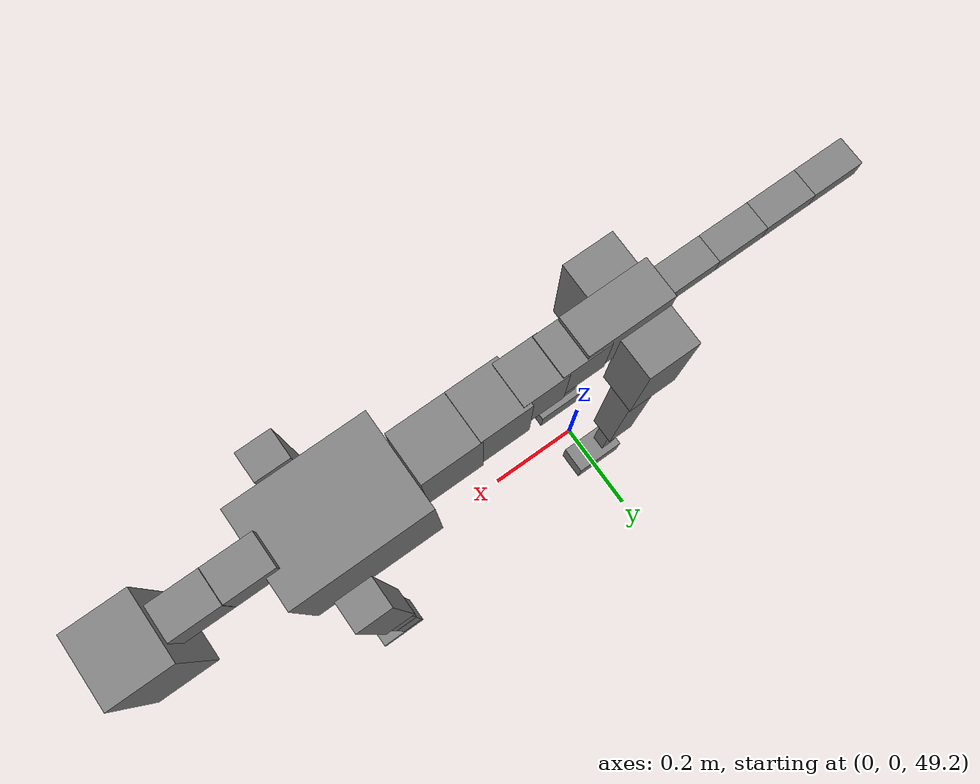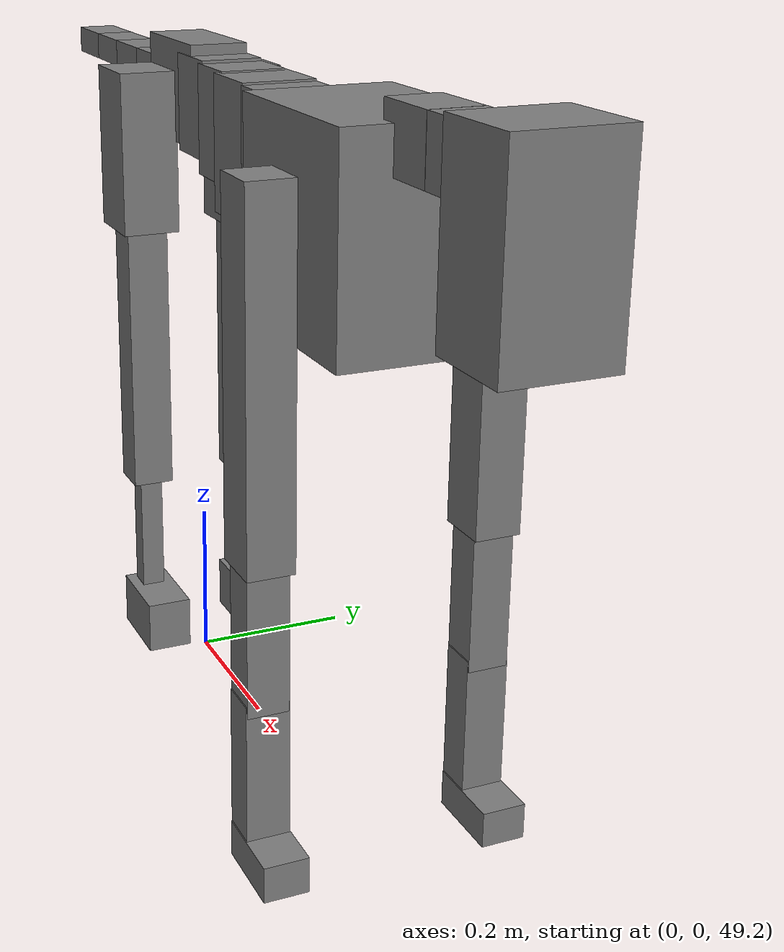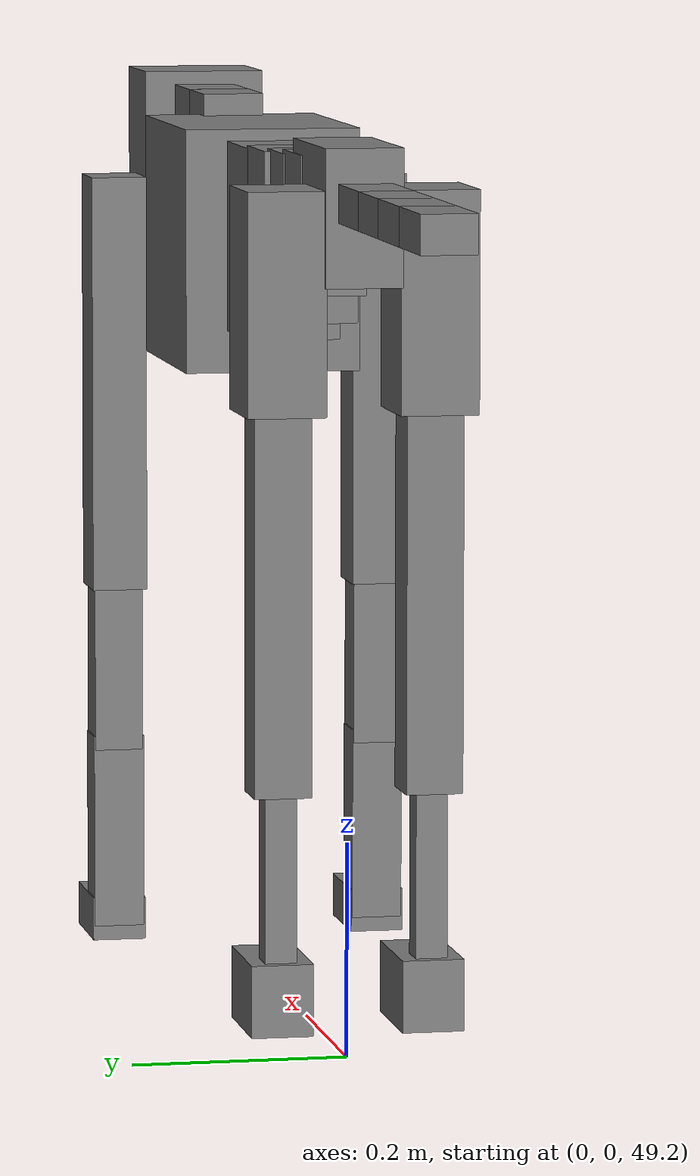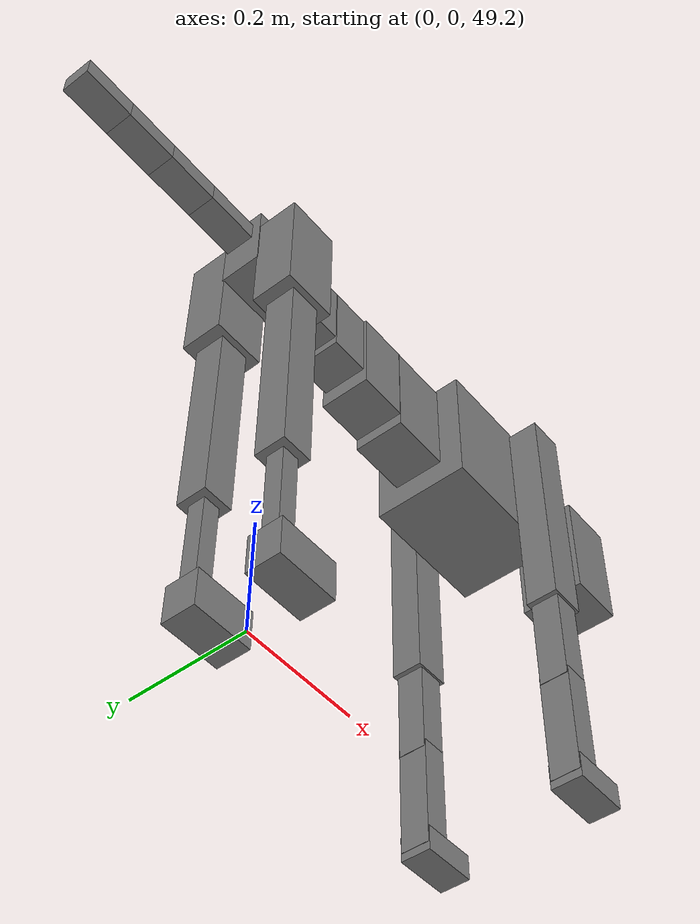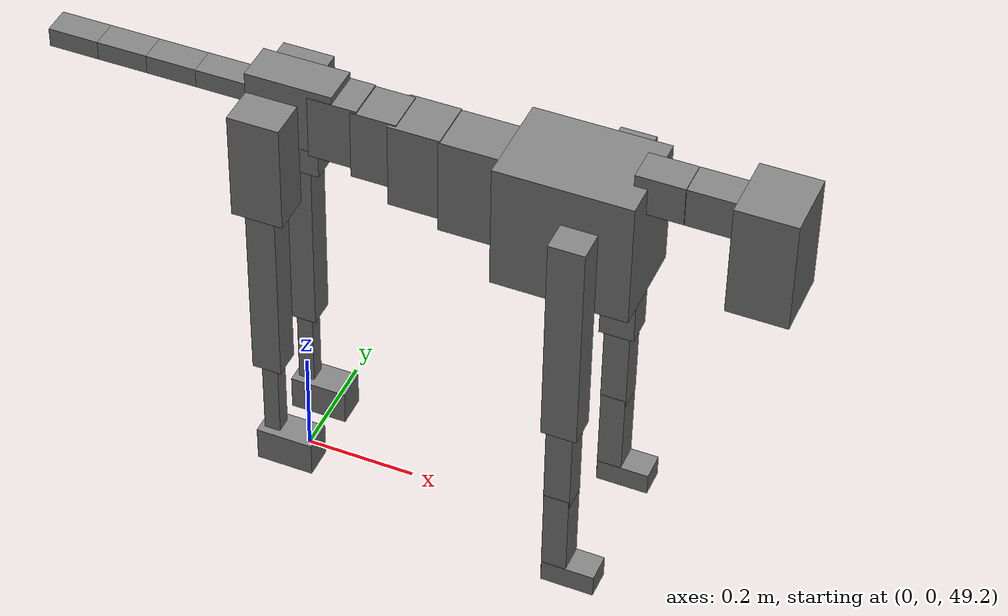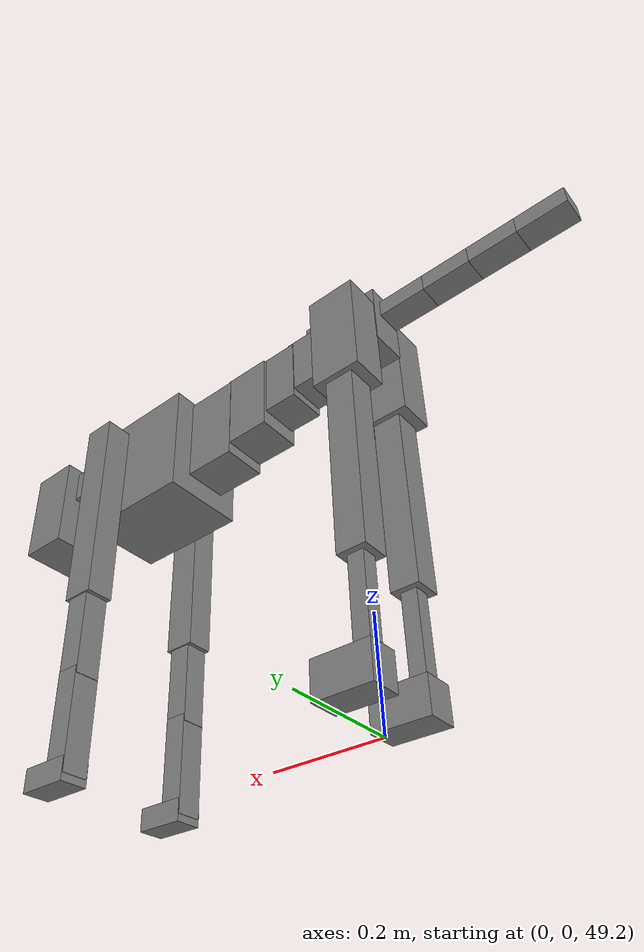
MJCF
<mujoco model="dog">

    <default>
        <joint armature="0.02" stiffness="1" damping="0.2" limited="true"/>
        <geom condim="3" friction="1 0.05 0.05" margin="0.01"/>
        <motor ctrllimited="true" ctrlrange="-1.0 1.0" forcelimited="true" gear="50"/>
    </default>

    <compiler inertiafromgeom="true" angle="radian"/>

    <option timestep="0.016" iterations="50" tolerance="1e-10" solver="Newton" jacobian="dense" cone="pyramidal"/>

    <size nconmax="20000" njmax="60000" nstack="5000000"/>
    <visual>
        <map force="0.1" zfar="30"/>
        <rgba haze="0.15 0.25 0.35 1"/>
        <quality shadowsize="2048"/>
        <global offwidth="800" offheight="800"/>
    </visual>

    <asset>
        <texture type="skybox" builtin="gradient" rgb1="0.3 0.5 0.7" rgb2="0 0 0" width="512" height="512"/>
        <texture name="texplane" type="2d" builtin="checker" rgb1=".2 .3 .4" rgb2=".1 0.15 0.2" width="512" height="512"
                 mark="cross" markrgb=".8 .8 .8"/>
        <texture name="texgeom" type="cube" builtin="flat" mark="cross" width="127" height="1278" rgb1="0.8 0.6 0.4"
                 rgb2="0.8 0.6 0.4" markrgb="1 1 1" random="0.01"/>

        <material name="matplane" reflectance="0.3" texture="texplane" texrepeat="1 1" texuniform="true"/>
        <material name="matgeom" texture="texgeom" texuniform="true" rgba="0.8 0.6 .4 1"/>
    </asset>

    <worldbody>
        <geom name="floor" pos="0 0 0" size="0 0 .25" type="plane" material="matplane" condim="3"/>

        <light directional="false" diffuse=".2 .2 .2" specular="0 0 0" pos="0 0 5" dir="0 0 -1" castshadow="false"/>
        <light mode="targetbodycom" target="torso" directional="false" diffuse=".8 .8 .8" specular="0.3 0.3 0.3"
               pos="0 0 4.0" dir="0 0 -1"/>

        <body name="root" pos="0 0 50">
            <freejoint name="root_1"/>
            <geom type="box" pos="0 0 -0.02" size="0.0774  0.0358  0.063" density="2030"/>

            <body name="spine1" pos="0.054 0 0">
                <joint name="spine1_y" axis="0 1 0" range="0 0.7" limited="true"/>
                <geom type="box" pos="0.02375 0 -0.03" size="0.04375  0.0375  0.05985" density="2030"/>

                <body name="spine2" pos="0.0612 0 0">
                    <joint name="spine2_y" axis="0 1 0" range="-0.15 0.15" limited="true"/>
                    <geom type="box" pos="0.03555  0  -0.04" size="0.04055  0.039  0.06615" density="2030"/>

                    <body name="spine3" pos="0.0730 0 0">
                        <joint name="spine3_y" axis="0 1 0" range="-0.15 0.15" limited="true"/>
                        <geom type="box" pos="0.03555  0  -0.057" size="0.04555  0.0445  0.081" density="2030"/>

                        <body name="spine4" pos="0.0780 0 0">
                            <joint name="spine4_y" axis="0 1 0" range="-0.15 0.15" limited="true"/>
                            <geom type="box" pos="0.05265  0  -0.07" size="0.05265  0.045  0.09135" density="2030"/>

                            <body name="torso" pos="0.1082 0 0">
                                <joint name="torso_y" axis="0 1 0" range="-0.15 0.15" limited="true"/>
                                <geom type="box" pos="0.11925  0  -0.085" size="0.11925  0.085  0.11745"
                                      density="2030"/>

                                <body name="neck1" pos="0.2160  0   0.0180">
                                    <joint name="neck1_y" axis="0 1 0" range="-1.2  -1" limited="true"/>
                                    <geom type="box" pos="0.0423  0  0" size="0.0423  0.03  0.036" density="2325"/>

                                    <body name="neck2" pos="0.0853  0  0">
                                        <joint name="neck2_y" axis="0 1 0" range="0.1  0" limited="true"/>
                                        <geom type="box" pos="0.0423  0  0" size="0.0423  0.03  0.036" density="2325"/>

                                        <body name="head" pos="0.0853  0  0">
                                            <joint name="head_y" axis="0 1 0" range="-0.3  -0.2" limited="true"/>
                                            <geom type="box" pos="0.0531  0  -0.055" size="0.0531  0.06  0.1044"
                                                  density="4030"/>

                                        </body>
                                    </body>
                                </body>

                                <body name="front_shoulder" pos="0.156  0   -0.0480">
                                    <joint name="front_shoulder_y" axis="0 1 0" range="-1 1.5" limited="true"/>
                                    <geom type="box" pos="0 0.13 -0.1766" size="0.0314  0.0268  0.2033" density="1158"/>
                                    <geom type="box" pos="0 -0.13 -0.1766" size="0.0314  0.0268  0.2033"
                                          density="1158"/>

                                    <body name="front_elbow" pos="0  0  -0.3532">
                                        <joint name="front_elbow_y" axis="0 1 0" range="-2 0" limited="true"/>
                                        <geom type="box" pos="0 0.13 -0.0936" size="0.0232  0.0237  0.0936"
                                              density="1081"/>
                                        <geom type="box" pos="0 -0.13 -0.0936" size="0.0232  0.0237  0.0936"
                                              density="1081"/>

                                        <body name="front_wrist" pos="0  0  -0.1871">
                                            <joint name="front_wrist_y" axis="0 1 0" range="-0.2 0" limited="true"/>
                                            <geom type="box" pos="0 0.13 -0.0818" size="0.0223  0.0247  0.0949"
                                                  density="1664"/>
                                            <geom type="box" pos="0 -0.13 -0.0818" size="0.0223  0.0247  0.0949"
                                                  density="1664"/>

                                            <body name="front_finger_end" pos="0  0  -0.1636">
                                                <joint name="front_finger_y" axis="0 1 0" range="-0.4 1"
                                                       limited="true"/>
                                                <geom type="box" pos="0.0259  0.13  -0.0061"
                                                      size="0.0475  0.0259  0.0211" density="1515"/>
                                                <geom type="box" pos="0.0259  -0.13  -0.0061"
                                                      size="0.0475  0.0259  0.0211" density="1515"/>

                                            </body>

                                        </body>
                                    </body>
                                </body>

                            </body>
                        </body>
                    </body>
                </body>
            </body>

            <body name="back_hip" pos="-0.03 0 -0.018">
                <joint name="back_hip_y" axis="0 1 0" range="-1.5 0.3" limited="true"/>
                <geom type="box" pos="0 0.07 -0.0791" size="0.0461  0.0361  0.1019" density="1154"/>
                <geom type="box" pos="0 -0.07 -0.0791" size="0.0461  0.0361  0.1019" density="1154"/>

                <body name="back_knee" pos="0  0  -0.1581">
                    <joint name="back_knee_y" axis="0 1 0" range="0 2.8" limited="true"/>
                    <geom type="box" pos="0 0.07 -0.1780" size="0.0265  0.0262  0.1935" density="1227"/>
                    <geom type="box" pos="0 -0.07 -0.1780" size="0.0265  0.0262  0.1935" density="1227"/>

                    <body name="back_ankle" pos="0  0  -0.3559">
                        <joint name="back_ankle_y" axis="0 1 0" range="-2.2 0" limited="true"/>
                        <geom type="box" pos="0 0.07 -0.0922" size="0.0147  0.0147  0.1034" density="1284"/>
                        <geom type="box" pos="0 -0.07 -0.0922" size="0.0147  0.0147  0.1034" density="1284"/>

                        <body name="back_toe_end" pos="0  0  -0.1843">
                            <joint name="back_toe_y" axis="0 1 0" range="-0.4 1" limited="true"/>
                            <geom type="box" pos="0.0286  0.07  -0.0184" size="0.0524  0.0286  0.0334" density="1515"/>
                            <geom type="box" pos="0.0286  -0.07  -0.0184" size="0.0524  0.0286  0.0334" density="1515"/>

                        </body>
                    </body>
                </body>
            </body>

            <body name="tail1" pos="-0.074 0 -0.006">
                <joint name="tail1_y" axis="0 1 0" range="-0.2 0.2" limited="true"/>
                <geom type="box" pos="-0.0536  0  0" size="0.045  0.025  0.0175" density="1587"/>

                <body name="tail2" pos="-0.09 0 0">
                    <joint name="tail2_y" axis="0 1 0" range="-0.2 0.2" limited="true"/>
                    <geom type="box" pos="-0.0536  0  0" size="0.045  0.025  0.0175" density="1587"/>

                    <body name="tail3" pos="-0.09 0 0">
                        <joint name="tail3_y" axis="0 1 0" range="-0.2 0.2" limited="true"/>
                        <geom type="box" pos="-0.0536  0  0" size="0.045  0.025  0.0175" density="1587"/>

                        <body name="tail4" pos="-0.09 0 0">
                            <joint name="tail4_y" axis="0 1 0" range="-0.2 0.2" limited="true"/>
                            <geom type="box" pos="-0.0536  0  0" size="0.045  0.025  0.0175" density="1587"/>

                        </body>
                    </body>
                </body>
            </body>
        </body>
    </worldbody>

    <actuator>
        <motor joint="spine1_y" forcerange="-150 150     "/>
        <motor joint="spine2_y" forcerange="-150 150     "/>
        <motor joint="spine3_y" forcerange="-150 150     "/>
        <motor joint="spine4_y" forcerange="-150 150     "/>
        <motor joint="torso_y" forcerange="-150 150     "/>
        <motor joint="neck1_y" forcerange="-100 100       "/>
        <motor joint="neck2_y" forcerange="-100 100       "/>
        <motor joint="head_y" forcerange="-150 150       "/>
        <motor joint="front_shoulder_y" forcerange="-124.71 154.11"/>
        <motor joint="front_elbow_y" forcerange="-154.97 117.59"/>
        <motor joint="front_wrist_y" forcerange="-135.91 61.90"/>
        <motor joint="front_finger_y" forcerange="-21.66 76.40"/>
        <motor joint="back_hip_y" forcerange="-383.12 298.67"/>
        <motor joint="back_knee_y" forcerange="-234.43 346.15"/>
        <motor joint="back_angle_y" forcerange="-82.18 53.38"/>
        <motor joint="back_toe_y" forcerange="-42.90 105.64"/>
        <motor joint="tail1_y" forcerange="-50 50     "/>
        <motor joint="tail2_y" forcerange="-50 50     "/>
        <motor joint="tail3_y" forcerange="-50 50     "/>
        <motor joint="tail4_y" forcerange="-50 50     "/>
    </actuator>
</mujoco>
